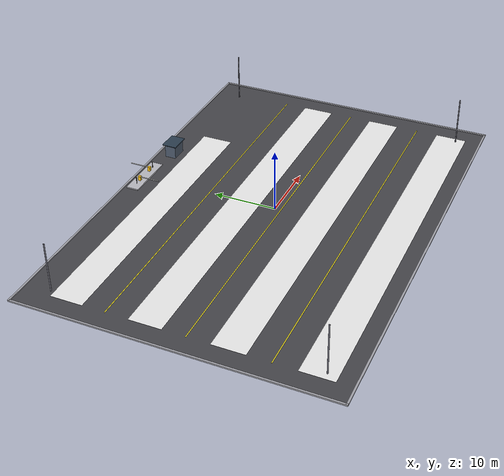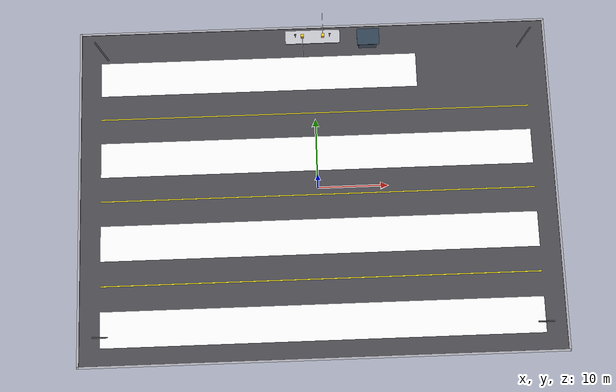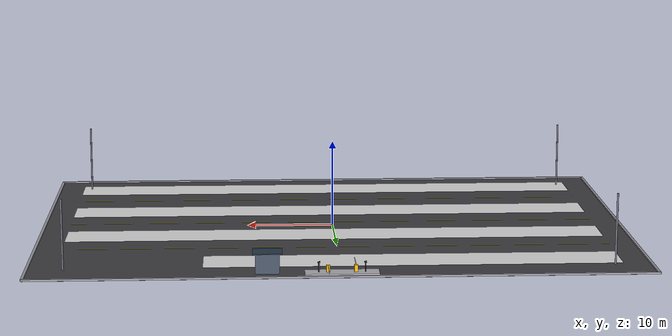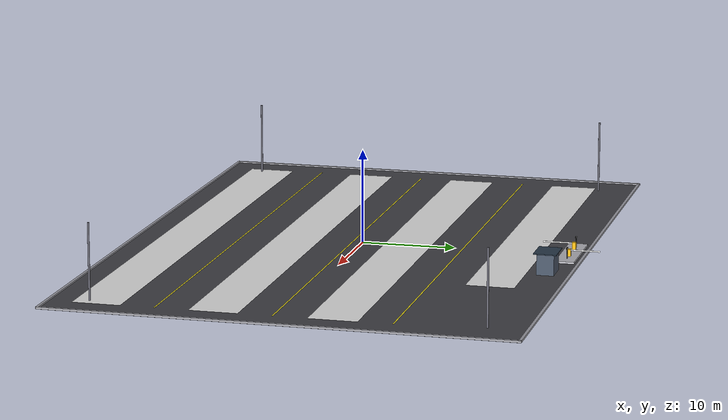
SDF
<?xml version="1.0" ?>
<sdf version="1.8">
  <model name="mcdonalds_rear_parking_lot">
    <static>true</static>
    <link name="parking_link">

      <!-- ==================== 物理碰撞剛體 ==================== -->
      <!-- 68m x 48m 瀝青地面大底 -->
      <collision name="ground_col">
        <pose>0 0 0.05 0 0 0</pose>
        <geometry><box><size>68.0 48.0 0.1</size></box></geometry>
        <surface><friction><ode><mu>0.85</mu><mu2>0.85</mu2></ode></friction></surface>
      </collision>

      <!-- 入口收費安全島碰撞體 -->
      <collision name="gate_island_col">
        <pose>0 22.5 0.3 0 0 0</pose>
        <geometry><box><size>8.0 2.2 0.6</size></box></geometry>
      </collision>

      <!-- 自助繳費亭碰撞體 -->
      <collision name="pay_station_col">
        <pose>8.0 21.5 1.2 0 0 0</pose>
        <geometry><box><size>3.0 2.2 2.4</size></box></geometry>
      </collision>

      <!-- ==================== 視覺主體：瀝青鋪面與周邊路緣石 ==================== -->
      <visual name="asphalt_deck">
        <pose>0 0 0.05 0 0 0</pose>
        <geometry><box><size>68.0 48.0 0.1</size></box></geometry>
        <material>
          <ambient>0.24 0.24 0.25 1</ambient>
          <diffuse>0.28 0.28 0.30 1</diffuse>
        </material>
      </visual>

      <!-- 周圍混凝土路緣石防護 (Perimeter Curbs) -->
      <visual name="curb_n"><pose>0 24.0 0.15 0 0 0</pose><geometry><box><size>68.2 0.3 0.2</size></box></geometry><material><ambient>0.6 0.6 0.62 1</ambient><diffuse>0.65 0.65 0.68 1</diffuse></material></visual>
      <visual name="curb_s"><pose>0 -24.0 0.15 0 0 0</pose><geometry><box><size>68.2 0.3 0.2</size></box></geometry><material><ambient>0.6 0.6 0.62 1</ambient><diffuse>0.65 0.65 0.68 1</diffuse></material></visual>
      <visual name="curb_e"><pose>34.0 0 0.15 0 0 0</pose><geometry><box><size>0.3 48.2 0.2</size></box></geometry><material><ambient>0.6 0.6 0.62 1</ambient><diffuse>0.65 0.65 0.68 1</diffuse></material></visual>
      <visual name="curb_w"><pose>-34.0 0 0.15 0 0 0</pose><geometry><box><size>0.3 48.2 0.2</size></box></geometry><material><ambient>0.6 0.6 0.62 1</ambient><diffuse>0.65 0.65 0.68 1</diffuse></material></visual>

      <!-- ==================== 標準白色車位劃線 (4 排車位, 每排 12~14 格) ==================== -->
      <!-- 南側車位排 (South Row: 12 格) -->
      <visual name="stall_lines_row1"><pose>0 -19.0 0.105 0 0 0</pose><geometry><box><size>62.0 5.0 0.002</size></box></geometry><material><ambient>0.92 0.92 0.92 1</ambient><diffuse>0.95 0.95 0.95 1</diffuse></material></visual>
      <!-- 中南車位排 (Mid-South Row: 12 格) -->
      <visual name="stall_lines_row2"><pose>0 -7.0 0.105 0 0 0</pose><geometry><box><size>62.0 5.0 0.002</size></box></geometry><material><ambient>0.92 0.92 0.92 1</ambient><diffuse>0.95 0.95 0.95 1</diffuse></material></visual>
      <!-- 中北車位排 (Mid-North Row: 12 格) -->
      <visual name="stall_lines_row3"><pose>0 5.0 0.105 0 0 0</pose><geometry><box><size>62.0 5.0 0.002</size></box></geometry><material><ambient>0.92 0.92 0.92 1</ambient><diffuse>0.95 0.95 0.95 1</diffuse></material></visual>
      <!-- 北側車位排 (North Row: 10 格) -->
      <visual name="stall_lines_row4"><pose>-8.0 17.0 0.105 0 0 0</pose><geometry><box><size>46.0 5.0 0.002</size></box></geometry><material><ambient>0.92 0.92 0.92 1</ambient><diffuse>0.95 0.95 0.95 1</diffuse></material></visual>

      <!-- 車行動線車道標線 (Driveway Lane Lines) -->
      <visual name="lane_line_s"><pose>0 -13.0 0.105 0 0 0</pose><geometry><box><size>62.0 0.15 0.002</size></box></geometry><material><ambient>0.9 0.82 0.1 1</ambient><diffuse>0.95 0.88 0.12 1</diffuse></material></visual>
      <visual name="lane_line_n"><pose>0 -1.0 0.105 0 0 0</pose><geometry><box><size>62.0 0.15 0.002</size></box></geometry><material><ambient>0.9 0.82 0.1 1</ambient><diffuse>0.95 0.88 0.12 1</diffuse></material></visual>
      <visual name="lane_line_entry"><pose>0 11.0 0.105 0 0 0</pose><geometry><box><size>62.0 0.15 0.002</size></box></geometry><material><ambient>0.9 0.82 0.1 1</ambient><diffuse>0.95 0.88 0.12 1</diffuse></material></visual>

      <!-- ==================== 入出口閘門與收費設備 ==================== -->
      <!-- 入出口中央安全島 -->
      <visual name="gate_island_vis"><pose>0 22.5 0.2 0 0 0</pose><geometry><box><size>8.0 2.0 0.2</size></box></geometry><material><ambient>0.7 0.7 0.72 1</ambient><diffuse>0.75 0.75 0.78 1</diffuse></material></visual>

      <!-- 車牌辨識立柱 (ALPR Poles) -->
      <visual name="alpr_pole1"><pose>-2.5 22.5 0.8 0 0 0</pose><geometry><cylinder><radius>0.06</radius><length>1.2</length></cylinder></geometry><material><ambient>0.15 0.15 0.15 1</ambient><diffuse>0.2 0.2 0.2 1</diffuse></material></visual>
      <visual name="alpr_cam1"><pose>-2.5 22.5 1.35 0 0.2 0</pose><geometry><box><size>0.25 0.15 0.15</size></box></geometry><material><ambient>0.1 0.1 0.1 1</ambient><diffuse>0.15 0.15 0.15 1</diffuse></material></visual>
      <visual name="alpr_pole2"><pose>2.5 22.5 0.8 0 0 0</pose><geometry><cylinder><radius>0.06</radius><length>1.2</length></cylinder></geometry><material><ambient>0.15 0.15 0.15 1</ambient><diffuse>0.2 0.2 0.2 1</diffuse></material></visual>
      <visual name="alpr_cam2"><pose>2.5 22.5 1.35 0 0.2 0</pose><geometry><box><size>0.25 0.15 0.15</size></box></geometry><material><ambient>0.1 0.1 0.1 1</ambient><diffuse>0.15 0.15 0.15 1</diffuse></material></visual>

      <!-- 電動升降欄杆機箱與柵欄 (Barrier Gates) -->
      <visual name="barrier_box_in"><pose>-1.5 22.5 0.6 0 0 0</pose><geometry><box><size>0.4 0.4 0.9</size></box></geometry><material><ambient>0.9 0.65 0.05 1</ambient><diffuse>0.98 0.75 0.08 1</diffuse></material></visual>
      <visual name="barrier_arm_in"><pose>-1.5 20.8 0.95 0 0 1.5708</pose><geometry><box><size>3.2 0.05 0.12</size></box></geometry><material><ambient>0.95 0.95 0.95 1</ambient><diffuse>0.98 0.98 0.98 1</diffuse></material></visual>
      <visual name="barrier_box_out"><pose>1.5 22.5 0.6 0 0 0</pose><geometry><box><size>0.4 0.4 0.9</size></box></geometry><material><ambient>0.9 0.65 0.05 1</ambient><diffuse>0.98 0.75 0.08 1</diffuse></material></visual>
      <visual name="barrier_arm_out"><pose>1.5 24.2 0.95 0 0 1.5708</pose><geometry><box><size>3.2 0.05 0.12</size></box></geometry><material><ambient>0.95 0.95 0.95 1</ambient><diffuse>0.98 0.98 0.98 1</diffuse></material></visual>

      <!-- 自助繳費亭 (Pay Station Canopy) -->
      <visual name="pay_booth_body"><pose>8.0 21.5 1.2 0 0 0</pose><geometry><box><size>2.6 1.8 2.2</size></box></geometry><material><ambient>0.25 0.3 0.35 1</ambient><diffuse>0.3 0.35 0.42 1</diffuse></material></visual>
      <visual name="pay_booth_roof"><pose>8.0 21.5 2.35 0 0 0</pose><geometry><box><size>3.2 2.4 0.1</size></box></geometry><material><ambient>0.15 0.2 0.25 1</ambient><diffuse>0.18 0.25 0.32 1</diffuse></material></visual>

      <!-- 照明高燈 (Floodlight Poles: 8m LED) -->
      <visual name="light_pole_sw"><pose>-30.0 -20.0 4.0 0 0 0</pose><geometry><cylinder><radius>0.1</radius><length>8.0</length></cylinder></geometry><material><ambient>0.4 0.4 0.45 1</ambient><diffuse>0.45 0.45 0.5 1</diffuse></material></visual>
      <visual name="light_pole_se"><pose>30.0 -20.0 4.0 0 0 0</pose><geometry><cylinder><radius>0.1</radius><length>8.0</length></cylinder></geometry><material><ambient>0.4 0.4 0.45 1</ambient><diffuse>0.45 0.45 0.5 1</diffuse></material></visual>
      <visual name="light_pole_nw"><pose>-30.0 20.0 4.0 0 0 0</pose><geometry><cylinder><radius>0.1</radius><length>8.0</length></cylinder></geometry><material><ambient>0.4 0.4 0.45 1</ambient><diffuse>0.45 0.45 0.5 1</diffuse></material></visual>
      <visual name="light_pole_ne"><pose>30.0 20.0 4.0 0 0 0</pose><geometry><cylinder><radius>0.1</radius><length>8.0</length></cylinder></geometry><material><ambient>0.4 0.4 0.45 1</ambient><diffuse>0.45 0.45 0.5 1</diffuse></material></visual>

    </link>
  </model>
</sdf>
